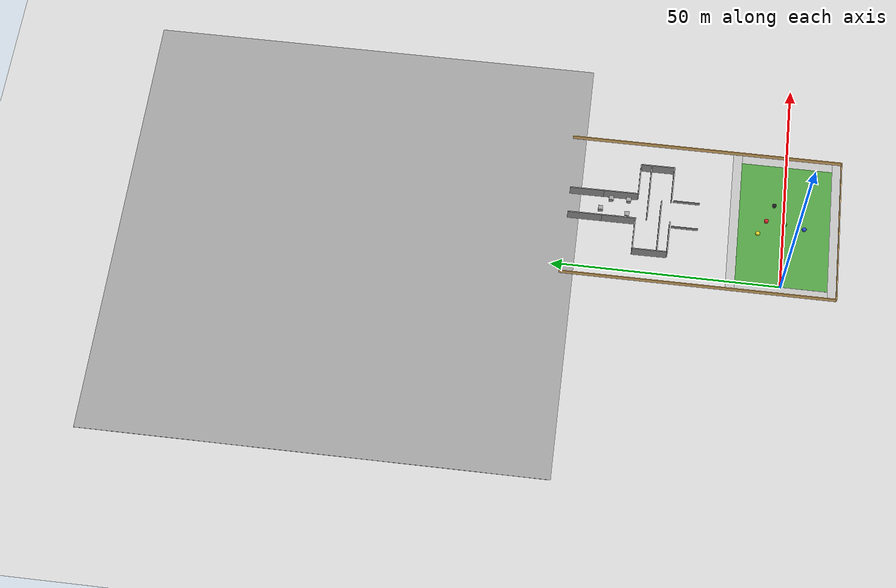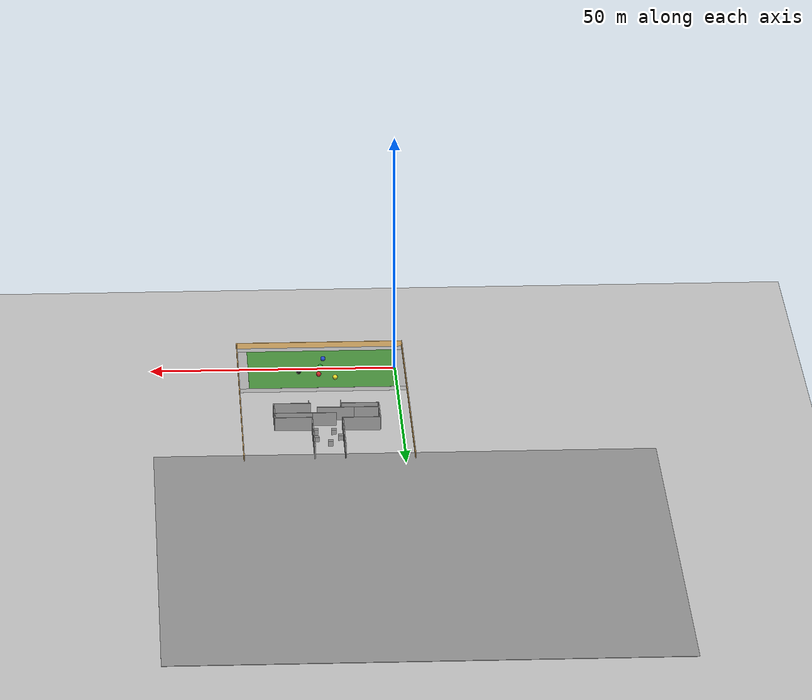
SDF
<sdf version="1.6">
 <world name="default">
  <light name="sun" type="directional">
   <pose>0 0 10 0 -0 0</pose>
   <diffuse>0.8 0.8 0.8 1</diffuse>
   <specular>0.2 0.2 0.2 1</specular>
   <attenuation>
    <range>1000</range>
    <constant>0.9</constant>
    <linear>0.01</linear>
    <quadratic>0.001</quadratic>
   </attenuation>
   <direction>-0.5 0.1 -0.9</direction>
  </light>
  <model name="ground_plane">
   <static>1</static>
   <link name="link">
    <collision name="collision">
     <geometry><plane><normal>0 0 1</normal><size>100 100</size></plane></geometry>
     <surface>
      <contact><collide_bitmask>65535</collide_bitmask></contact>
      <friction><ode><mu>100</mu><mu2>50</mu2></ode></friction>
     </surface>
    </collision>
    <visual name="visual">
     <cast_shadows>0</cast_shadows>
     <geometry><plane><normal>0 0 1</normal><size>100 100</size></plane></geometry>
     <material>
      <script><uri>file://media/materials/scripts/gazebo.material</uri><name>Gazebo/Grey</name></script>
     </material>
    </visual>
   </link>
  </model>
  <gravity>0 0 -9.8</gravity>
  <magnetic_field>6e-06 2.3e-05 -4.2e-05</magnetic_field>
  <atmosphere type="adiabatic"/>
  <physics name="default_physics" default="0" type="ode">
   <max_step_size>0.001</max_step_size>
   <real_time_factor>1</real_time_factor>
   <real_time_update_rate>1000</real_time_update_rate>
  </physics>
  <scene><ambient>0.4 0.4 0.4 1</ambient><background>0.7 0.7 0.7 1</background><shadows>1</shadows></scene>
  <audio><device>default</device></audio>
  <spherical_coordinates>
   <surface_model>EARTH_WGS84</surface_model>
   <latitude_deg>0</latitude_deg>
   <longitude_deg>0</longitude_deg>
   <elevation>0</elevation>
   <heading_deg>0</heading_deg>
  </spherical_coordinates>
  <model name="unit_sphere">
   <pose>15.7018 3.92322 0.51 0 -0 0</pose>
   <link name="link">
    <inertial>
     <mass>1</mass>
     <inertia><ixx>0.1</ixx><ixy>0</ixy><ixz>0</ixz><iyy>0.1</iyy><iyz>0</iyz><izz>0.1</izz></inertia>
    </inertial>
    <collision name="collision"><geometry><sphere><radius>0.5</radius></sphere></geometry></collision>
    <visual name="visual">
     <geometry><sphere><radius>0.5</radius></sphere></geometry>
     <material>
      <script><name>Gazebo/Red</name><uri>file://media/materials/scripts/gazebo.material</uri></script>
     </material>
    </visual>
   </link>
  </model>
  <model name="unit_sphere_0">
   <pose>15.2503 -0.134225 0.51 0 -0 0</pose>
   <link name="link">
    <inertial>
     <mass>1</mass>
     <inertia><ixx>0.1</ixx><ixy>0</ixy><ixz>0</ixz><iyy>0.1</iyy><iyz>0</iyz><izz>0.1</izz></inertia>
    </inertial>
    <collision name="collision"><geometry><sphere><radius>0.5</radius></sphere></geometry></collision>
    <visual name="visual">
     <geometry><sphere><radius>0.5</radius></sphere></geometry>
     <material>
      <script><name>Gazebo/Green</name><uri>file://media/materials/scripts/gazebo.material</uri></script>
     </material>
    </visual>
   </link>
  </model>
  <model name="unit_sphere_1">
   <pose>14.5553 -4.42702 0.51 0 -0 0</pose>
   <link name="link">
    <inertial>
     <mass>1</mass>
     <inertia><ixx>0.1</ixx><ixy>0</ixy><ixz>0</ixz><iyy>0.1</iyy><iyz>0</iyz><izz>0.1</izz></inertia>
    </inertial>
    <collision name="collision"><geometry><sphere><radius>0.5</radius></sphere></geometry></collision>
    <visual name="visual">
     <geometry><sphere><radius>0.5</radius></sphere></geometry>
     <material>
      <script><name>Gazebo/Blue</name><uri>file://media/materials/scripts/gazebo.material</uri></script>
     </material>
    </visual>
   </link>
  </model>
  <model name="ground_plane_0">
   <static>1</static>
   <link name="link">
    <collision name="collision">
     <geometry><plane><normal>0 0 1</normal><size>100 100</size></plane></geometry>
     <surface><friction><ode><mu>100</mu><mu2>50</mu2></ode></friction></surface>
    </collision>
    <visual name="visual">
     <cast_shadows>0</cast_shadows>
     <geometry><plane><normal>0 0 1</normal><size>100 100</size></plane></geometry>
     <material>
      <script><uri>file://media/materials/scripts/gazebo.material</uri><name>Gazebo/Grey</name></script>
     </material>
    </visual>
   </link>
   <pose>0.033354 95.0033 0 0 -0 0</pose>
  </model>
  <model name="robocup_3d_field">
   <static>1</static>
   <link name="field">
    <pose>0 0 0.01 0 -0 0</pose>
    <collision name="collision">
     <geometry><plane><normal>0 0 1</normal><size>30 20</size></plane></geometry>
     <surface><friction><ode><mu>100</mu><mu2>50</mu2></ode></friction></surface>
    </collision>
    <visual name="base1">
     <pose>0 11 0.001 0 -0 0</pose>
     <cast_shadows>0</cast_shadows>
     <geometry><plane><normal>0 0 1</normal><size>34 2</size></plane></geometry>
     <material>
      <script>
       <uri>model://robocup_3Dsim_field/materials/scripts/</uri>
       <uri>model://robocup_3Dsim_field/materials/textures/</uri>
       <name>RoboCup/FieldBorder</name>
      </script>
     </material>
    </visual>
    <visual name="base2">
     <pose>0 -11 0.001 0 -0 0</pose>
     <cast_shadows>0</cast_shadows>
     <geometry><plane><normal>0 0 1</normal><size>34 2</size></plane></geometry>
     <material>
      <script>
       <uri>model://robocup_3Dsim_field/materials/scripts/</uri>
       <uri>model://robocup_3Dsim_field/materials/textures/</uri>
       <name>RoboCup/FieldBorder</name>
      </script>
     </material>
    </visual>
    <visual name="base3">
     <pose>16 0 0.001 0 -0 0</pose>
     <cast_shadows>0</cast_shadows>
     <geometry><plane><normal>0 0 1</normal><size>2 20</size></plane></geometry>
     <material>
      <script>
       <uri>model://robocup_3Dsim_field/materials/scripts/</uri>
       <uri>model://robocup_3Dsim_field/materials/textures/</uri>
       <name>RoboCup/FieldBorder</name>
      </script>
     </material>
    </visual>
    <visual name="base4">
     <pose>-16 0 0.001 0 -0 0</pose>
     <cast_shadows>0</cast_shadows>
     <geometry><plane><normal>0 0 1</normal><size>2 20</size></plane></geometry>
     <material>
      <script>
       <uri>model://robocup_3Dsim_field/materials/scripts/</uri>
       <uri>model://robocup_3Dsim_field/materials/textures/</uri>
       <name>RoboCup/FieldBorder</name>
      </script>
     </material>
    </visual>
    <visual name="carpet">
     <cast_shadows>0</cast_shadows>
     <geometry><plane><normal>0 0 1</normal><size>30 20</size></plane></geometry>
     <material>
      <script>
       <uri>model://robocup_3Dsim_field/materials/scripts/</uri>
       <uri>model://robocup_3Dsim_field/materials/textures/</uri>
       <name>RoboCup/Grass</name>
      </script>
     </material>
    </visual>
   </link>
   <pose>15.0498 -0.030213 0 0 -0 0</pose>
  </model>
  <model name="build5.16">
   <pose>15.058 18 0 0 -0 0</pose>
   <link name="Wall_0">
    <collision name="Wall_0_Collision">
     <geometry><box><size>60.15 0.15 1.2</size></box></geometry>
     <pose>0 0 0.6 0 -0 0</pose>
    </collision>
    <visual name="Wall_0_Visual">
     <pose>0 0 0.6 0 -0 0</pose>
     <geometry><box><size>60.15 0.15 1.2</size></box></geometry>
     <material>
      <script><uri>file://media/materials/scripts/gazebo.material</uri><name>Gazebo/Grey</name></script>
      <ambient>0.913725 0.72549 0.431373 1</ambient>
     </material>
     <meta><layer>0</layer></meta>
    </visual>
    <pose>-17.027 0 0 0 -0 1.5708</pose>
   </link>
   <link name="Wall_3">
    <collision name="Wall_3_Collision">
     <geometry><box><size>60.15 0.15 1.2</size></box></geometry>
     <pose>0 0 0.6 0 -0 0</pose>
    </collision>
    <visual name="Wall_3_Visual">
     <pose>0 0 0.6 0 -0 0</pose>
     <geometry><box><size>60.15 0.15 1.2</size></box></geometry>
     <material>
      <script><uri>file://media/materials/scripts/gazebo.material</uri><name>Gazebo/Grey</name></script>
      <ambient>0.913725 0.72549 0.431373 1</ambient>
     </material>
     <meta><layer>0</layer></meta>
    </visual>
    <pose>17.027 0 0 0 -0 1.5708</pose>
   </link>
   <link name="Wall_5">
    <collision name="Wall_5_Collision">
     <geometry><box><size>34.204 0.15 1.2</size></box></geometry>
     <pose>0 0 0.6 0 -0 0</pose>
    </collision>
    <visual name="Wall_5_Visual">
     <pose>0 0 0.6 0 -0 0</pose>
     <geometry><box><size>34.204 0.15 1.2</size></box></geometry>
     <material>
      <script><uri>file://media/materials/scripts/gazebo.material</uri><name>Gazebo/Grey</name></script>
      <ambient>0.913725 0.72549 0.431373 1</ambient>
     </material>
     <meta><layer>0</layer></meta>
    </visual>
    <pose>-0 -30 0 0 -0 0</pose>
   </link>
   <static>1</static>
  </model>
  <model name="grey_wall_clone_clone_clone_clone">
   <static>1</static>
   <link name="link">
    <pose>0 0 1.4 0 -0 0</pose>
    <collision name="collision"><geometry><box><size>7.5 0.2 2.8</size></box></geometry></collision>
    <visual name="visual">
     <cast_shadows>0</cast_shadows>
     <geometry><box><size>7.5 0.2 2.8</size></box></geometry>
     <material>
      <script>
       <uri>model://grey_wall/materials/scripts</uri>
       <uri>model://grey_wall/materials/textures</uri>
       <name>vrc/grey_wall</name>
      </script>
     </material>
    </visual>
   </link>
   <pose>8.15827 25.0686 0 0 0 -0.012529</pose>
  </model>
  <model name="grey_wall_clone_clone_clone_clone_clone">
   <static>1</static>
   <link name="link">
    <pose>0 0 1.4 0 -0 0</pose>
    <collision name="collision"><geometry><box><size>7.5 0.2 2.8</size></box></geometry></collision>
    <visual name="visual">
     <cast_shadows>0</cast_shadows>
     <geometry><box><size>7.5 0.2 2.8</size></box></geometry>
     <material>
      <script>
       <uri>model://grey_wall/materials/scripts</uri>
       <uri>model://grey_wall/materials/textures</uri>
       <name>vrc/grey_wall</name>
      </script>
     </material>
    </visual>
   </link>
   <pose>21.7858 24.9928 0 0 0 -0.012529</pose>
  </model>
  <model name="grey_wall_clone_clone_clone_clone_clone_0">
   <static>1</static>
   <link name="link">
    <pose>0 0 1.4 0 -0 0</pose>
    <collision name="collision"><geometry><box><size>7.5 0.2 2.8</size></box></geometry></collision>
    <visual name="visual">
     <cast_shadows>0</cast_shadows>
     <geometry><box><size>7.5 0.2 2.8</size></box></geometry>
     <material>
      <script>
       <uri>model://grey_wall/materials/scripts</uri>
       <uri>model://grey_wall/materials/textures</uri>
       <name>vrc/grey_wall</name>
      </script>
     </material>
    </visual>
   </link>
   <pose>13.1464 27.2556 0 0 0 -0.012529</pose>
  </model>
  <model name="grey_wall_clone_clone_clone_clone_clone_0_clone">
   <static>1</static>
   <link name="link">
    <pose>0 0 1.4 0 -0 0</pose>
    <collision name="collision"><geometry><box><size>7.5 0.2 2.8</size></box></geometry></collision>
    <visual name="visual">
     <cast_shadows>0</cast_shadows>
     <geometry><box><size>7.5 0.2 2.8</size></box></geometry>
     <material>
      <script>
       <uri>model://grey_wall/materials/scripts</uri>
       <uri>model://grey_wall/materials/textures</uri>
       <name>vrc/grey_wall</name>
      </script>
     </material>
    </visual>
   </link>
   <pose>4.38844 29.0039 0 0 -0 1.57375</pose>
  </model>
  <model name="grey_wall_clone_clone_clone_clone_clone_0_clone_clone">
   <static>1</static>
   <link name="link">
    <pose>0 0 1.4 0 -0 0</pose>
    <collision name="collision"><geometry><box><size>7.5 0.2 2.8</size></box></geometry></collision>
    <visual name="visual">
     <cast_shadows>0</cast_shadows>
     <geometry><box><size>7.5 0.2 2.8</size></box></geometry>
     <material>
      <script>
       <uri>model://grey_wall/materials/scripts</uri>
       <uri>model://grey_wall/materials/textures</uri>
       <name>vrc/grey_wall</name>
      </script>
     </material>
    </visual>
   </link>
   <pose>25.5369 28.6675 0 0 -0 1.57375</pose>
  </model>
  <model name="grey_wall_clone_clone_clone_clone_clone_0_clone_0">
   <static>1</static>
   <link name="link">
    <pose>0 0 1.4 0 -0 0</pose>
    <collision name="collision"><geometry><box><size>7.5 0.2 2.8</size></box></geometry></collision>
    <visual name="visual">
     <cast_shadows>0</cast_shadows>
     <geometry><box><size>7.5 0.2 2.8</size></box></geometry>
     <material>
      <script>
       <uri>model://grey_wall/materials/scripts</uri>
       <uri>model://grey_wall/materials/textures</uri>
       <name>vrc/grey_wall</name>
      </script>
     </material>
    </visual>
   </link>
   <pose>21.6401 30.0131 0 0 0 -0.012529</pose>
  </model>
  <model name="grey_wall_clone_clone_clone_clone_clone_0_clone_0_clone">
   <static>1</static>
   <link name="link">
    <pose>0 0 1.4 0 -0 0</pose>
    <collision name="collision"><geometry><box><size>7.5 0.2 2.8</size></box></geometry></collision>
    <visual name="visual">
     <cast_shadows>0</cast_shadows>
     <geometry><box><size>7.5 0.2 2.8</size></box></geometry>
     <material>
      <script>
       <uri>model://grey_wall/materials/scripts</uri>
       <uri>model://grey_wall/materials/textures</uri>
       <name>vrc/grey_wall</name>
      </script>
     </material>
    </visual>
   </link>
   <pose>16.8111 30.0679 0 0 0 -0.012529</pose>
  </model>
  <model name="grey_wall_clone_clone_clone_clone_clone_0_clone_0_clone_clone">
   <static>1</static>
   <link name="link">
    <pose>0 0 1.4 0 -0 0</pose>
    <collision name="collision"><geometry><box><size>7.5 0.2 2.8</size></box></geometry></collision>
    <visual name="visual">
     <cast_shadows>0</cast_shadows>
     <geometry><box><size>7.5 0.2 2.8</size></box></geometry>
     <material>
      <script>
       <uri>model://grey_wall/materials/scripts</uri>
       <uri>model://grey_wall/materials/textures</uri>
       <name>vrc/grey_wall</name>
      </script>
     </material>
    </visual>
   </link>
   <pose>8.10687 27.3185 0 0 0 -0.012529</pose>
  </model>
  <model name="grey_wall_clone_clone_clone_clone_clone_0_clone_0_clone_clone_0">
   <static>1</static>
   <link name="link">
    <pose>0 0 1.4 0 -0 0</pose>
    <collision name="collision"><geometry><box><size>7.5 0.2 2.8</size></box></geometry></collision>
    <visual name="visual">
     <cast_shadows>0</cast_shadows>
     <geometry><box><size>7.5 0.2 2.8</size></box></geometry>
     <material>
      <script>
       <uri>model://grey_wall/materials/scripts</uri>
       <uri>model://grey_wall/materials/textures</uri>
       <name>vrc/grey_wall</name>
      </script>
     </material>
    </visual>
   </link>
   <pose>8.0867 32.6709 0 0 0 -0.012529</pose>
  </model>
  <model name="grey_wall_clone_clone_clone_clone_clone_0_clone_0_clone_0">
   <static>1</static>
   <link name="link">
    <pose>0 0 1.4 0 -0 0</pose>
    <collision name="collision"><geometry><box><size>7.5 0.2 2.8</size></box></geometry></collision>
    <visual name="visual">
     <cast_shadows>0</cast_shadows>
     <geometry><box><size>7.5 0.2 2.8</size></box></geometry>
     <material>
      <script>
       <uri>model://grey_wall/materials/scripts</uri>
       <uri>model://grey_wall/materials/textures</uri>
       <name>vrc/grey_wall</name>
      </script>
     </material>
    </visual>
   </link>
   <pose>21.7268 32.3808 0 0 0 -0.012529</pose>
  </model>
  <model name="grey_wall_clone_clone_clone_clone_clone_0_clone_clone_clone">
   <static>1</static>
   <link name="link">
    <pose>0 0 1.4 0 -0 0</pose>
    <collision name="collision"><geometry><box><size>7.5 0.2 2.8</size></box></geometry></collision>
    <visual name="visual">
     <cast_shadows>0</cast_shadows>
     <geometry><box><size>7.5 0.2 2.8</size></box></geometry>
     <material>
      <script>
       <uri>model://grey_wall/materials/scripts</uri>
       <uri>model://grey_wall/materials/textures</uri>
       <name>vrc/grey_wall</name>
      </script>
     </material>
    </visual>
   </link>
   <pose>18.0356 36.2826 0 0 -0 1.57375</pose>
  </model>
  <model name="grey_wall_clone_clone_clone_clone_clone_0_clone_clone_clone_0">
   <static>1</static>
   <link name="link">
    <pose>0 0 1.4 0 -0 0</pose>
    <collision name="collision"><geometry><box><size>7.5 0.2 2.8</size></box></geometry></collision>
    <visual name="visual">
     <cast_shadows>0</cast_shadows>
     <geometry><box><size>7.5 0.2 2.8</size></box></geometry>
     <material>
      <script>
       <uri>model://grey_wall/materials/scripts</uri>
       <uri>model://grey_wall/materials/textures</uri>
       <name>vrc/grey_wall</name>
      </script>
     </material>
    </visual>
   </link>
   <pose>11.8968 36.2374 0 0 -0 1.57375</pose>
  </model>
  <model name="grey_wall_clone_clone_clone_clone_clone_0_clone_clone_clone_0_clone">
   <static>1</static>
   <link name="link">
    <pose>0 0 1.4 0 -0 0</pose>
    <collision name="collision"><geometry><box><size>7.5 0.2 2.8</size></box></geometry></collision>
    <visual name="visual">
     <cast_shadows>0</cast_shadows>
     <geometry><box><size>7.5 0.2 2.8</size></box></geometry>
     <material>
      <script>
       <uri>model://grey_wall/materials/scripts</uri>
       <uri>model://grey_wall/materials/textures</uri>
       <name>vrc/grey_wall</name>
      </script>
     </material>
    </visual>
   </link>
   <pose>11.8789 43.7332 0 0 -0 1.57375</pose>
  </model>
  <model name="grey_wall_clone_clone_clone_clone_clone_0_clone_clone_clone_0_clone_0">
   <static>1</static>
   <link name="link">
    <pose>0 0 1.4 0 -0 0</pose>
    <collision name="collision"><geometry><box><size>7.5 0.2 2.8</size></box></geometry></collision>
    <visual name="visual">
     <cast_shadows>0</cast_shadows>
     <geometry><box><size>7.5 0.2 2.8</size></box></geometry>
     <material>
      <script>
       <uri>model://grey_wall/materials/scripts</uri>
       <uri>model://grey_wall/materials/textures</uri>
       <name>vrc/grey_wall</name>
      </script>
     </material>
    </visual>
   </link>
   <pose>18.0042 43.7664 0 0 -0 1.57375</pose>
  </model>
  <model name="unit_box_clone">
   <pose>14.6722 40.3937 0.51 0 -0 0</pose>
   <link name="link">
    <inertial>
     <mass>1</mass>
     <inertia>
      <ixx>0.166667</ixx>
      <ixy>0</ixy>
      <ixz>0</ixz>
      <iyy>0.166667</iyy>
      <iyz>0</iyz>
      <izz>0.166667</izz>
     </inertia>
    </inertial>
    <collision name="collision"><geometry><box><size>1 1 1</size></box></geometry></collision>
    <visual name="visual">
     <geometry><box><size>1 1 1</size></box></geometry>
     <material>
      <script><name>Gazebo/Grey</name><uri>file://media/materials/scripts/gazebo.material</uri></script>
     </material>
    </visual>
   </link>
  </model>
  <model name="unit_box_clone_0">
   <pose>17.3736 38.2353 0.51 0 -0 0</pose>
   <link name="link">
    <inertial>
     <mass>1</mass>
     <inertia>
      <ixx>0.166667</ixx>
      <ixy>0</ixy>
      <ixz>0</ixz>
      <iyy>0.166667</iyy>
      <iyz>0</iyz>
      <izz>0.166667</izz>
     </inertia>
    </inertial>
    <collision name="collision"><geometry><box><size>1 1 1</size></box></geometry></collision>
    <visual name="visual">
     <geometry><box><size>1 1 1</size></box></geometry>
     <material>
      <script><name>Gazebo/Grey</name><uri>file://media/materials/scripts/gazebo.material</uri></script>
     </material>
    </visual>
   </link>
  </model>
  <model name="unit_box_clone_1">
   <pose>12.535 37.5216 0.51 0 -0 0</pose>
   <link name="link">
    <inertial>
     <mass>1</mass>
     <inertia>
      <ixx>0.166667</ixx>
      <ixy>0</ixy>
      <ixz>0</ixz>
      <iyy>0.166667</iyy>
      <iyz>0</iyz>
      <izz>0.166667</izz>
     </inertia>
    </inertial>
    <collision name="collision"><geometry><box><size>1 1 1</size></box></geometry></collision>
    <visual name="visual">
     <geometry><box><size>1 1 1</size></box></geometry>
     <material>
      <script><name>Gazebo/Grey</name><uri>file://media/materials/scripts/gazebo.material</uri></script>
     </material>
    </visual>
   </link>
  </model>
  <model name="unit_box_clone_2">
   <pose>13.7918 34.5208 0.51 0 -0 0</pose>
   <link name="link">
    <inertial>
     <mass>1</mass>
     <inertia>
      <ixx>0.166667</ixx>
      <ixy>0</ixy>
      <ixz>0</ixz>
      <iyy>0.166667</iyy>
      <iyz>0</iyz>
      <izz>0.166667</izz>
     </inertia>
    </inertial>
    <collision name="collision"><geometry><box><size>1 1 1</size></box></geometry></collision>
    <visual name="visual">
     <geometry><box><size>1 1 1</size></box></geometry>
     <material>
      <script><name>Gazebo/Grey</name><uri>file://media/materials/scripts/gazebo.material</uri></script>
     </material>
    </visual>
   </link>
  </model>
  <model name="unit_box_clone_3">
   <pose>17.424 34.3853 0.51 0 -0 0</pose>
   <link name="link">
    <inertial>
     <mass>1</mass>
     <inertia>
      <ixx>0.166667</ixx>
      <ixy>0</ixy>
      <ixz>0</ixz>
      <iyy>0.166667</iyy>
      <iyz>0</iyz>
      <izz>0.166667</izz>
     </inertia>
    </inertial>
    <collision name="collision"><geometry><box><size>1 1 1</size></box></geometry></collision>
    <visual name="visual">
     <geometry><box><size>1 1 1</size></box></geometry>
     <material>
      <script><name>Gazebo/Grey</name><uri>file://media/materials/scripts/gazebo.material</uri></script>
     </material>
    </visual>
   </link>
  </model>
  <model name="unit_sphere_3">
   <pose>19.7535 2.36682 0.51 0 -0 0</pose>
   <link name="link">
    <inertial>
     <mass>1</mass>
     <inertia><ixx>0.1</ixx><ixy>0</ixy><ixz>0</ixz><iyy>0.1</iyy><iyz>0</iyz><izz>0.1</izz></inertia>
    </inertial>
    <collision name="collision"><geometry><sphere><radius>0.5</radius></sphere></geometry></collision>
    <visual name="visual">
     <geometry><sphere><radius>0.5</radius></sphere></geometry>
     <material>
      <script><name>Gazebo/Black</name><uri>file://media/materials/scripts/gazebo.material</uri></script>
     </material>
    </visual>
   </link>
  </model>
  <model name="Untitled">
   <pose>15.087 21.6665 0 0 -0 0</pose>
   <link name="Wall_0">
    <collision name="Wall_0_Collision">
     <geometry><box><size>5.817 0.15 0.8</size></box></geometry>
     <pose>0 0 0.4 0 -0 0</pose>
    </collision>
    <visual name="Wall_0_Visual">
     <pose>0 0 0.4 0 -0 0</pose>
     <geometry><box><size>5.817 0.15 0.8</size></box></geometry>
     <material>
      <script><uri>file://media/materials/scripts/gazebo.material</uri><name>Gazebo/Grey</name></script>
      <ambient>1 1 1 1</ambient>
     </material>
     <meta><layer>0</layer></meta>
    </visual>
    <pose>-3.215 0 0 0 -0 1.5708</pose>
   </link>
   <link name="Wall_2">
    <collision name="Wall_2_Collision">
     <geometry><box><size>5.817 0.15 0.8</size></box></geometry>
     <pose>0 0 0.4 0 -0 0</pose>
    </collision>
    <visual name="Wall_2_Visual">
     <pose>0 0 0.4 0 -0 0</pose>
     <geometry><box><size>5.817 0.15 0.8</size></box></geometry>
     <material>
      <script><uri>file://media/materials/scripts/gazebo.material</uri><name>Gazebo/Grey</name></script>
      <ambient>1 1 1 1</ambient>
     </material>
     <meta><layer>0</layer></meta>
    </visual>
    <pose>3.215 0 0 0 -0 1.5708</pose>
   </link>
   <static>1</static>
  </model>
  <model name="unit_sphere_4">
   <pose>12.4144 5.64973 0.51 0 -0 0</pose>
   <link name="link">
    <inertial>
     <mass>1</mass>
     <inertia><ixx>0.1</ixx><ixy>0</ixy><ixz>0</ixz><iyy>0.1</iyy><iyz>0</iyz><izz>0.1</izz></inertia>
    </inertial>
    <collision name="collision"><geometry><sphere><radius>0.5</radius></sphere></geometry></collision>
    <visual name="visual">
     <geometry><sphere><radius>0.5</radius></sphere></geometry>
     <material>
      <script><name>Gazebo/Yellow</name><uri>file://media/materials/scripts/gazebo.material</uri></script>
     </material>
    </visual>
   </link>
  </model>
 </world>
</sdf>
